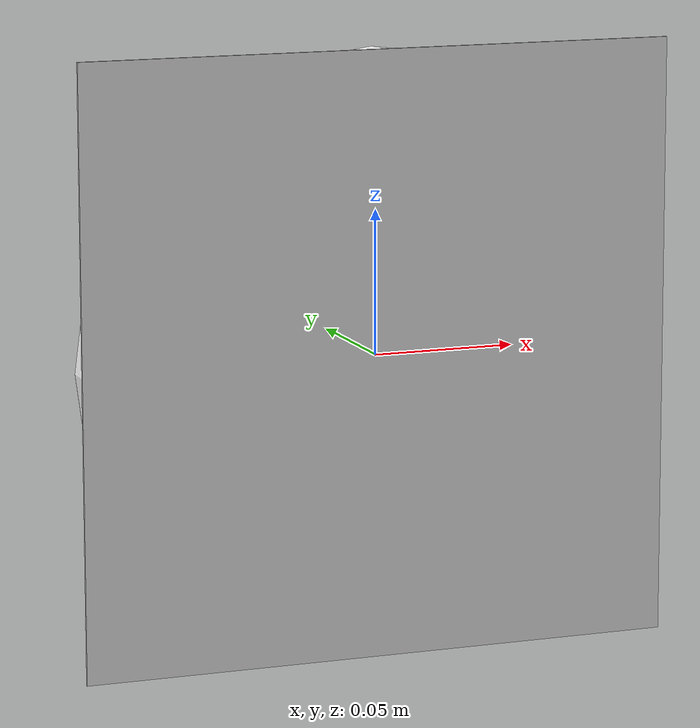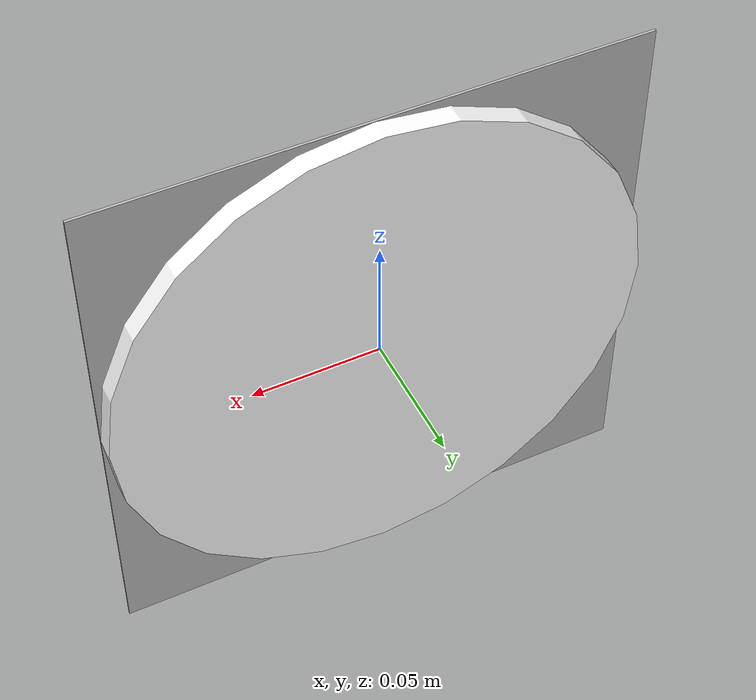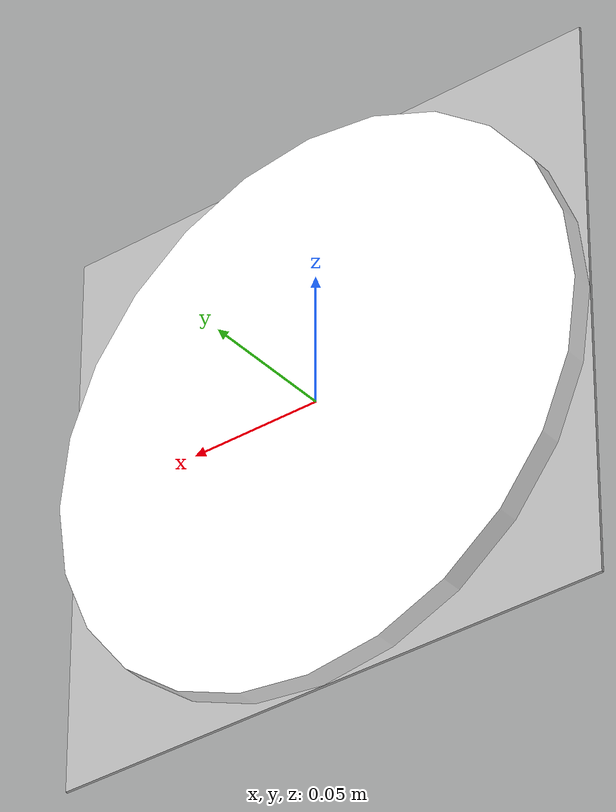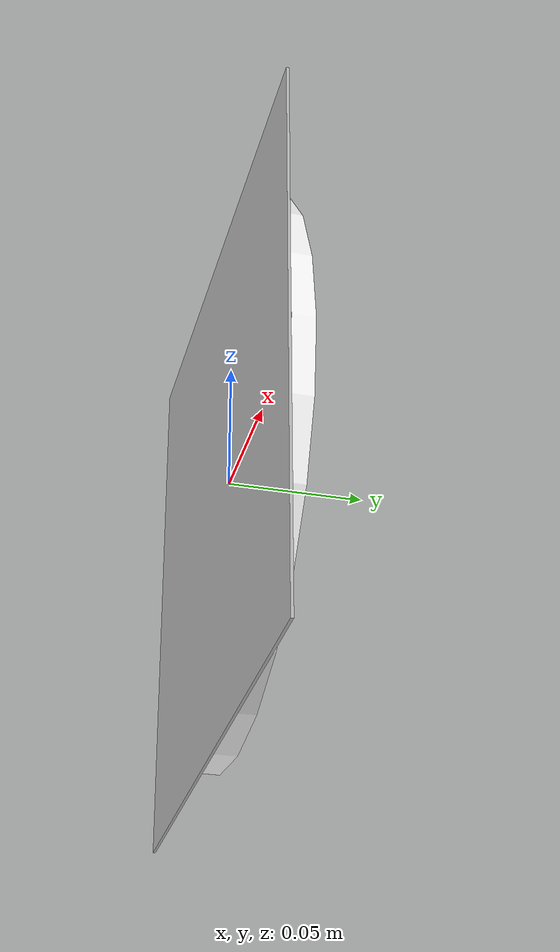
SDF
<?xml version="1.0" ?>
<sdf version="1.6">
  <model name="turn_sign_left">
    <static>true</static>
    <link name="board_link">
      <visual name="white_disk">
        <pose>0 0 0 1.5707963267948966 0 0</pose>
        <geometry>
          <cylinder>
            <radius>0.105</radius>
            <length>0.008</length>
          </cylinder>
        </geometry>
        <material>
          <ambient>1 1 1 1</ambient>
          <diffuse>1 1 1 1</diffuse>
        </material>
      </visual>
      <visual name="sign_face">
        <!-- Thin box in XZ (faces ±Y); offset to -Y side for spawn approach -->
        <pose>0 -0.0046 0 0 0 0</pose>
        <geometry>
          <box>
            <size>0.21 0.001 0.21</size>
          </box>
        </geometry>
        <material>
          <script>
            <uri>model://turn_sign_left/materials/scripts</uri>
            <uri>model://turn_sign_left/materials/textures</uri>
            <name>TurnSignLeftMaterial</name>
          </script>
        </material>
      </visual>
    </link>
  </model>
</sdf>
